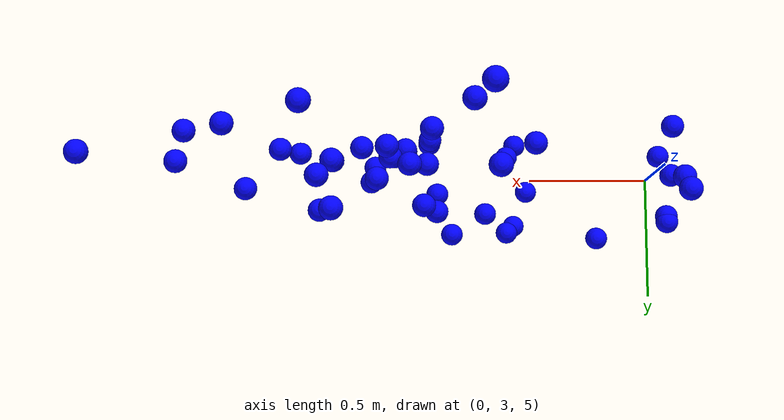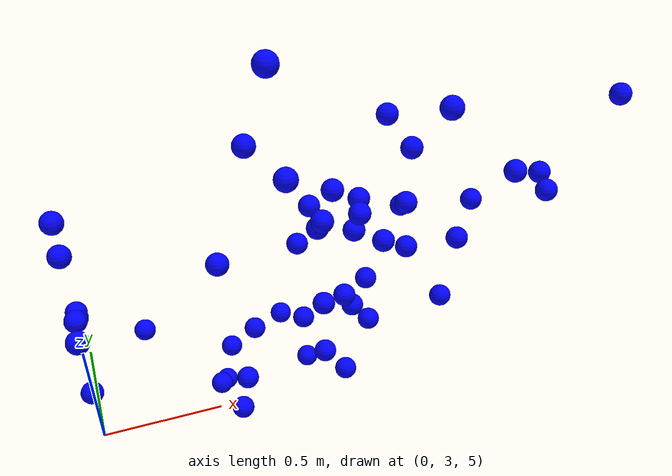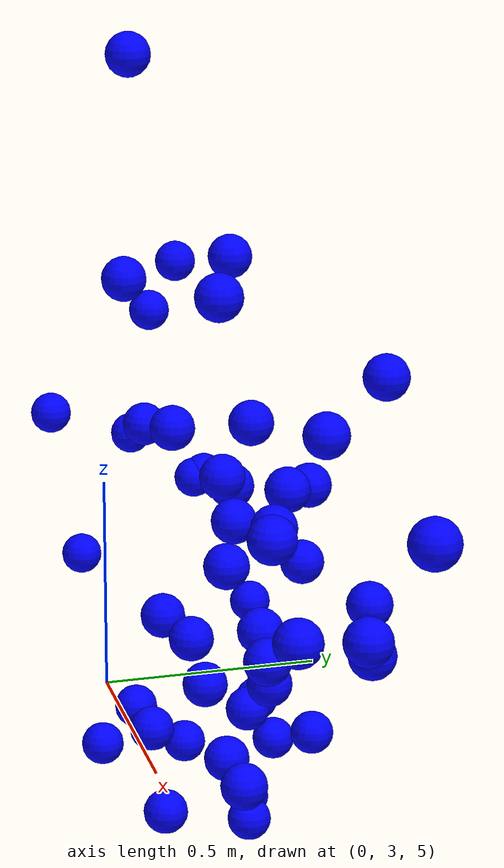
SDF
<sdf version="1.10">
 <world name="sphere">
  <model name="ground_plane">
   <static>true</static>
   <link name="link">
    <collision name="collision">
     <geometry><plane><normal>0 0 1</normal><size>100 100</size></plane></geometry>
    </collision>
    <visual name="visual">
     <geometry><plane><normal>0 0 1</normal><size>100 100</size></plane></geometry>
     <material>
      <ambient>0.800000012 0.800000012 0.800000012 1</ambient>
      <diffuse>0.800000012 0.800000012 0.800000012 1</diffuse>
      <specular>0.800000012 0.800000012 0.800000012 1</specular>
     </material>
    </visual>
    <inertial>
     <mass>1</mass>
     <inertia><ixx>1</ixx><ixy>0</ixy><ixz>0</ixz><iyy>1</iyy><iyz>0</iyz><izz>1</izz></inertia>
    </inertial>
   </link>
  </model>
  <model name="sphere_03">
   <pose>1.3758639097213745 3.2076399326324463 5.7371301651000977 0 0 0</pose>
   <link name="sphere_link">
    <inertial>
     <inertia>
      <ixx>0.10000000000000001</ixx>
      <ixy>0</ixy>
      <ixz>0</ixz>
      <iyy>0.10000000000000001</iyy>
      <iyz>0</iyz>
      <izz>0.10000000000000001</izz>
     </inertia>
     <mass>1</mass>
    </inertial>
    <collision name="sphere_collision">
     <geometry><sphere><radius>0.044999999999999998</radius></sphere></geometry>
    </collision>
    <visual name="sphere_visual">
     <geometry><sphere><radius>0.044999999999999998</radius></sphere></geometry>
     <material><ambient>0 0 1 1</ambient><diffuse>0 0 1 1</diffuse><specular>0 0 1 1</specular></material>
    </visual>
   </link>
   <static>false</static>
   <self_collide>true</self_collide>
  </model>
  <model name="sphere_04">
   <pose>0.90909630060195923 3.0961899757385254 5.3272900581359863 0 0 0</pose>
   <link name="sphere_link">
    <inertial>
     <inertia>
      <ixx>0.10000000000000001</ixx>
      <ixy>0</ixy>
      <ixz>0</ixz>
      <iyy>0.10000000000000001</iyy>
      <iyz>0</iyz>
      <izz>0.10000000000000001</izz>
     </inertia>
     <mass>1</mass>
    </inertial>
    <collision name="sphere_collision">
     <geometry><sphere><radius>0.044999999999999998</radius></sphere></geometry>
    </collision>
    <visual name="sphere_visual">
     <geometry><sphere><radius>0.044999999999999998</radius></sphere></geometry>
     <material><ambient>0 0 1 1</ambient><diffuse>0 0 1 1</diffuse><specular>0 0 1 1</specular></material>
    </visual>
   </link>
   <static>false</static>
   <self_collide>true</self_collide>
  </model>
  <model name="sphere_06">
   <pose>0.52478998899459839 3.0577552318572998 5.0836100578308105 0 0 0</pose>
   <link name="sphere_link">
    <inertial>
     <inertia>
      <ixx>0.10000000000000001</ixx>
      <ixy>0</ixy>
      <ixz>0</ixz>
      <iyy>0.10000000000000001</iyy>
      <iyz>0</iyz>
      <izz>0.10000000000000001</izz>
     </inertia>
     <mass>1</mass>
     <pose>0 0 0.69999999999999996 0 0 0</pose>
    </inertial>
    <collision name="sphere_collision">
     <geometry><sphere><radius>0.044999999999999998</radius></sphere></geometry>
    </collision>
    <visual name="sphere_visual">
     <geometry><sphere><radius>0.044999999999999998</radius></sphere></geometry>
     <material><ambient>0 0 1 1</ambient><diffuse>0 0 1 1</diffuse><specular>0 0 1 1</specular></material>
    </visual>
   </link>
   <static>false</static>
   <self_collide>true</self_collide>
  </model>
  <model name="sphere_07">
   <pose>0.84674102067947388 3.2525029182434082 5.2275600433349609 0 0 0</pose>
   <link name="sphere_link">
    <inertial>
     <inertia>
      <ixx>0.10000000000000001</ixx>
      <ixy>0</ixy>
      <ixz>0</ixz>
      <iyy>0.10000000000000001</iyy>
      <iyz>0</iyz>
      <izz>0.10000000000000001</izz>
     </inertia>
     <mass>1</mass>
    </inertial>
    <collision name="sphere_collision">
     <geometry><sphere><radius>0.044999999999999998</radius></sphere></geometry>
    </collision>
    <visual name="sphere_visual">
     <geometry><sphere><radius>0.044999999999999998</radius></sphere></geometry>
     <material><ambient>0 0 1 1</ambient><diffuse>0 0 1 1</diffuse><specular>0 0 1 1</specular></material>
    </visual>
   </link>
   <static>false</static>
   <self_collide>true</self_collide>
  </model>
  <model name="sphere_12">
   <pose>1.1540199518203735 3.1078150272369385 5.8965902328491211 0 0 0</pose>
   <link name="sphere_link">
    <inertial>
     <inertia>
      <ixx>0.10000000000000001</ixx>
      <ixy>0</ixy>
      <ixz>0</ixz>
      <iyy>0.10000000000000001</iyy>
      <iyz>0</iyz>
      <izz>0.10000000000000001</izz>
     </inertia>
     <mass>1</mass>
     <pose>0 0 0.69999999999999996 0 0 0</pose>
    </inertial>
    <collision name="sphere_collision">
     <geometry><sphere><radius>0.044999999999999998</radius></sphere></geometry>
    </collision>
    <visual name="sphere_visual">
     <geometry><sphere><radius>0.044999999999999998</radius></sphere></geometry>
     <material><ambient>0 0 1 1</ambient><diffuse>0 0 1 1</diffuse><specular>0 0 1 1</specular></material>
    </visual>
   </link>
   <static>false</static>
   <self_collide>true</self_collide>
  </model>
  <model name="sphere_13">
   <pose>0.25382706522941589 3.2772500514984131 5.2821002006530762 0 0 0</pose>
   <link name="sphere_link">
    <inertial>
     <inertia>
      <ixx>0.10000000000000001</ixx>
      <ixy>0</ixy>
      <ixz>0</ixz>
      <iyy>0.10000000000000001</iyy>
      <iyz>0</iyz>
      <izz>0.10000000000000001</izz>
     </inertia>
     <mass>1</mass>
     <pose>0 0 0.69999999999999996 0 0 0</pose>
    </inertial>
    <collision name="sphere_collision">
     <geometry><sphere><radius>0.044999999999999998</radius></sphere></geometry>
    </collision>
    <visual name="sphere_visual">
     <geometry><sphere><radius>0.044999999999999998</radius></sphere></geometry>
     <material><ambient>0 0 1 1</ambient><diffuse>0 0 1 1</diffuse><specular>0 0 1 1</specular></material>
    </visual>
   </link>
   <static>false</static>
   <self_collide>true</self_collide>
  </model>
  <model name="sphere_14">
   <pose>1.0408979654312134 2.9444799423217773 5.5553398132324219 0 0 0</pose>
   <link name="sphere_link">
    <inertial>
     <inertia>
      <ixx>0.10000000000000001</ixx>
      <ixy>0</ixy>
      <ixz>0</ixz>
      <iyy>0.10000000000000001</iyy>
      <iyz>0</iyz>
      <izz>0.10000000000000001</izz>
     </inertia>
     <mass>1</mass>
     <pose>0 0 0.69999999999999996 0 0 0</pose>
    </inertial>
    <collision name="sphere_collision">
     <geometry><sphere><radius>0.044999999999999998</radius></sphere></geometry>
    </collision>
    <visual name="sphere_visual">
     <geometry><sphere><radius>0.044999999999999998</radius></sphere></geometry>
     <material><ambient>0 0 1 1</ambient><diffuse>0 0 1 1</diffuse><specular>0 0 1 1</specular></material>
    </visual>
   </link>
   <static>false</static>
   <self_collide>true</self_collide>
  </model>
  <model name="sphere_17">
   <pose>1.1766971349716187 3.0682199001312256 5.5024600028991699 0 0 0</pose>
   <link name="sphere_link">
    <inertial>
     <inertia>
      <ixx>0.10000000000000001</ixx>
      <ixy>0</ixy>
      <ixz>0</ixz>
      <iyy>0.10000000000000001</iyy>
      <iyz>0</iyz>
      <izz>0.10000000000000001</izz>
     </inertia>
     <mass>1</mass>
     <pose>0 0 0.69999999999999996 0 0 0</pose>
    </inertial>
    <collision name="sphere_collision">
     <geometry><sphere><radius>0.044999999999999998</radius></sphere></geometry>
    </collision>
    <visual name="sphere_visual">
     <geometry><sphere><radius>0.044999999999999998</radius></sphere></geometry>
     <material><ambient>0 0 1 1</ambient><diffuse>0 0 1 1</diffuse><specular>0 0 1 1</specular></material>
    </visual>
   </link>
   <static>false</static>
   <self_collide>true</self_collide>
  </model>
  <model name="sphere_18">
   <pose>1.3726999759674072 3.1196067333221436 6.0826001167297363 0 0 0</pose>
   <link name="sphere_link">
    <inertial>
     <inertia>
      <ixx>0.10000000000000001</ixx>
      <ixy>0</ixy>
      <ixz>0</ixz>
      <iyy>0.10000000000000001</iyy>
      <iyz>0</iyz>
      <izz>0.10000000000000001</izz>
     </inertia>
     <mass>1</mass>
     <pose>0 0 0.69999999999999996 0 0 0</pose>
    </inertial>
    <collision name="sphere_collision">
     <geometry><sphere><radius>0.044999999999999998</radius></sphere></geometry>
    </collision>
    <visual name="sphere_visual">
     <geometry><sphere><radius>0.044999999999999998</radius></sphere></geometry>
     <material><ambient>0 0 1 1</ambient><diffuse>0 0 1 1</diffuse><specular>0 0 1 1</specular></material>
    </visual>
   </link>
   <static>false</static>
   <self_collide>true</self_collide>
  </model>
  <model name="sphere_20">
   <pose>1.5283499956130981 2.966209888458252 5.7112307548522949 0 0 0</pose>
   <link name="sphere_link">
    <inertial>
     <inertia>
      <ixx>0.10000000000000001</ixx>
      <ixy>0</ixy>
      <ixz>0</ixz>
      <iyy>0.10000000000000001</iyy>
      <iyz>0</iyz>
      <izz>0.10000000000000001</izz>
     </inertia>
     <mass>1</mass>
     <pose>0 0 0.69999999999999996 0 0 0</pose>
    </inertial>
    <collision name="sphere_collision">
     <geometry><sphere><radius>0.044999999999999998</radius></sphere></geometry>
    </collision>
    <visual name="sphere_visual">
     <geometry><sphere><radius>0.044999999999999998</radius></sphere></geometry>
     <material><ambient>0 0 1 1</ambient><diffuse>0 0 1 1</diffuse><specular>0 0 1 1</specular></material>
    </visual>
   </link>
   <static>false</static>
   <self_collide>true</self_collide>
  </model>
  <model name="sphere_21">
   <pose>2.2217400074005127 3.0480799674987793 6.2031421661376953 0 0 0</pose>
   <link name="sphere_link">
    <inertial>
     <inertia>
      <ixx>0.10000000000000001</ixx>
      <ixy>0</ixy>
      <ixz>0</ixz>
      <iyy>0.10000000000000001</iyy>
      <iyz>0</iyz>
      <izz>0.10000000000000001</izz>
     </inertia>
     <mass>1</mass>
     <pose>0 0 0.69999999999999996 0 0 0</pose>
    </inertial>
    <collision name="sphere_collision">
     <geometry><sphere><radius>0.044999999999999998</radius></sphere></geometry>
    </collision>
    <visual name="sphere_visual">
     <geometry><sphere><radius>0.044999999999999998</radius></sphere></geometry>
     <material><ambient>0 0 1 1</ambient><diffuse>0 0 1 1</diffuse><specular>0 0 1 1</specular></material>
    </visual>
   </link>
   <static>false</static>
   <self_collide>true</self_collide>
  </model>
  <model name="sphere_23">
   <pose>1.7234451770782471 2.9191300868988037 6.0306200981140137 0 0 0</pose>
   <link name="sphere_link">
    <inertial>
     <inertia>
      <ixx>0.10000000000000001</ixx>
      <ixy>0</ixy>
      <ixz>0</ixz>
      <iyy>0.10000000000000001</iyy>
      <iyz>0</iyz>
      <izz>0.10000000000000001</izz>
     </inertia>
     <mass>1</mass>
     <pose>0 0 0.69999999999999996 0 0 0</pose>
    </inertial>
    <collision name="sphere_collision">
     <geometry><sphere><radius>0.044999999999999998</radius></sphere></geometry>
    </collision>
    <visual name="sphere_visual">
     <geometry><sphere><radius>0.044999999999999998</radius></sphere></geometry>
     <material><ambient>0 0 1 1</ambient><diffuse>0 0 1 1</diffuse><specular>0 0 1 1</specular></material>
    </visual>
   </link>
   <static>false</static>
   <self_collide>true</self_collide>
  </model>
  <model name="sphere_24">
   <pose>0.920390784740448 3.0976099967956543 5.0828800201416016 0 0 0</pose>
   <link name="sphere_link">
    <inertial>
     <inertia>
      <ixx>0.10000000000000001</ixx>
      <ixy>0</ixy>
      <ixz>0</ixz>
      <iyy>0.10000000000000001</iyy>
      <iyz>0</iyz>
      <izz>0.10000000000000001</izz>
     </inertia>
     <mass>1</mass>
     <pose>0 0 0.69999999999999996 0 0 0</pose>
    </inertial>
    <collision name="sphere_collision">
     <geometry><sphere><radius>0.044999999999999998</radius></sphere></geometry>
    </collision>
    <visual name="sphere_visual">
     <geometry><sphere><radius>0.044999999999999998</radius></sphere></geometry>
     <material><ambient>0 0 1 1</ambient><diffuse>0 0 1 1</diffuse><specular>0 0 1 1</specular></material>
    </visual>
   </link>
   <static>false</static>
   <self_collide>true</self_collide>
  </model>
  <model name="sphere_25">
   <pose>1.1628700494766235 2.9856400489807129 5.3452863693237305 0 0 0</pose>
   <link name="sphere_link">
    <inertial>
     <inertia>
      <ixx>0.10000000000000001</ixx>
      <ixy>0</ixy>
      <ixz>0</ixz>
      <iyy>0.10000000000000001</iyy>
      <iyz>0</iyz>
      <izz>0.10000000000000001</izz>
     </inertia>
     <mass>1</mass>
     <pose>0 0 0.69999999999999996 0 0 0</pose>
    </inertial>
    <collision name="sphere_collision">
     <geometry><sphere><radius>0.044999999999999998</radius></sphere></geometry>
    </collision>
    <visual name="sphere_visual">
     <geometry><sphere><radius>0.044999999999999998</radius></sphere></geometry>
     <material><ambient>0 0 1 1</ambient><diffuse>0 0 1 1</diffuse><specular>0 0 1 1</specular></material>
    </visual>
   </link>
   <static>false</static>
   <self_collide>true</self_collide>
  </model>
  <model name="sphere_27">
   <pose>1.4216636419296265 2.9017300605773926 6.3804302215576172 0 0 0</pose>
   <link name="sphere_link">
    <inertial>
     <inertia>
      <ixx>0.10000000000000001</ixx>
      <ixy>0</ixy>
      <ixz>0</ixz>
      <iyy>0.10000000000000001</iyy>
      <iyz>0</iyz>
      <izz>0.10000000000000001</izz>
     </inertia>
     <mass>1</mass>
     <pose>0 0 0.69999999999999996 0 0 0</pose>
    </inertial>
    <collision name="sphere_collision">
     <geometry><sphere><radius>0.044999999999999998</radius></sphere></geometry>
    </collision>
    <visual name="sphere_visual">
     <geometry><sphere><radius>0.044999999999999998</radius></sphere></geometry>
     <material><ambient>0 0 1 1</ambient><diffuse>0 0 1 1</diffuse><specular>0 0 1 1</specular></material>
    </visual>
   </link>
   <static>false</static>
   <self_collide>true</self_collide>
  </model>
  <model name="sphere_28">
   <pose>1.6581699848175049 3.1258094310760498 5.7612099647521973 0 0 0</pose>
   <link name="sphere_link">
    <inertial>
     <inertia>
      <ixx>0.10000000000000001</ixx>
      <ixy>0</ixy>
      <ixz>0</ixz>
      <iyy>0.10000000000000001</iyy>
      <iyz>0</iyz>
      <izz>0.10000000000000001</izz>
     </inertia>
     <mass>1</mass>
     <pose>0 0 0.69999999999999996 0 0 0</pose>
    </inertial>
    <collision name="sphere_collision">
     <geometry><sphere><radius>0.044999999999999998</radius></sphere></geometry>
    </collision>
    <visual name="sphere_visual">
     <geometry><sphere><radius>0.044999999999999998</radius></sphere></geometry>
     <material><ambient>0 0 1 1</ambient><diffuse>0 0 1 1</diffuse><specular>0 0 1 1</specular></material>
    </visual>
   </link>
   <static>false</static>
   <self_collide>true</self_collide>
  </model>
  <model name="sphere_35">
   <pose>1.9086498022079468 3.0391800403594971 5.9025201797485352 0 0 0</pose>
   <link name="sphere_link">
    <inertial>
     <inertia>
      <ixx>0.10000000000000001</ixx>
      <ixy>0</ixy>
      <ixz>0</ixz>
      <iyy>0.10000000000000001</iyy>
      <iyz>0</iyz>
      <izz>0.10000000000000001</izz>
     </inertia>
     <mass>1</mass>
     <pose>0 0 0.69999999999999996 0 0 0</pose>
    </inertial>
    <collision name="sphere_collision">
     <geometry><sphere><radius>0.044999999999999998</radius></sphere></geometry>
    </collision>
    <visual name="sphere_visual">
     <geometry><sphere><radius>0.044999999999999998</radius></sphere></geometry>
     <material><ambient>0 0 1 1</ambient><diffuse>0 0 1 1</diffuse><specular>0 0 1 1</specular></material>
    </visual>
   </link>
   <static>false</static>
   <self_collide>true</self_collide>
  </model>
  <model name="sphere_38">
   <pose>0.70926922559738159 3.1699800491333008 5.2538199424743652 0 0 0</pose>
   <link name="sphere_link">
    <inertial>
     <inertia>
      <ixx>0.10000000000000001</ixx>
      <ixy>0</ixy>
      <ixz>0</ixz>
      <iyy>0.10000000000000001</iyy>
      <iyz>0</iyz>
      <izz>0.10000000000000001</izz>
     </inertia>
     <mass>1</mass>
     <pose>0 0 0.69999999999999996 0 0 0</pose>
    </inertial>
    <collision name="sphere_collision">
     <geometry><sphere><radius>0.044999999999999998</radius></sphere></geometry>
    </collision>
    <visual name="sphere_visual">
     <geometry><sphere><radius>0.044999999999999998</radius></sphere></geometry>
     <material><ambient>0 0 1 1</ambient><diffuse>0 0 1 1</diffuse><specular>0 0 1 1</specular></material>
    </visual>
   </link>
   <static>false</static>
   <self_collide>true</self_collide>
  </model>
  <model name="sphere_39">
   <pose>1.3259987831115723 3.0083398818969727 5.6839499473571777 0 0 0</pose>
   <link name="sphere_link">
    <inertial>
     <inertia>
      <ixx>0.10000000000000001</ixx>
      <ixy>0</ixy>
      <ixz>0</ixz>
      <iyy>0.10000000000000001</iyy>
      <iyz>0</iyz>
      <izz>0.10000000000000001</izz>
     </inertia>
     <mass>1</mass>
     <pose>0 0 0.69999999999999996 0 0 0</pose>
    </inertial>
    <collision name="sphere_collision">
     <geometry><sphere><radius>0.044999999999999998</radius></sphere></geometry>
    </collision>
    <visual name="sphere_visual">
     <geometry><sphere><radius>0.044999999999999998</radius></sphere></geometry>
     <material><ambient>0 0 1 1</ambient><diffuse>0 0 1 1</diffuse><specular>0 0 1 1</specular></material>
    </visual>
   </link>
   <static>false</static>
   <self_collide>true</self_collide>
  </model>
  <model name="sphere_40">
   <pose>1.4648668766021729 2.9401900768280029 5.4328398704528809 0 0 0</pose>
   <link name="sphere_link">
    <inertial>
     <inertia>
      <ixx>0.10000000000000001</ixx>
      <ixy>0</ixy>
      <ixz>0</ixz>
      <iyy>0.10000000000000001</iyy>
      <iyz>0</iyz>
      <izz>0.10000000000000001</izz>
     </inertia>
     <mass>1</mass>
     <pose>0 0 0.69999999999999996 0 0 0</pose>
    </inertial>
    <collision name="sphere_collision">
     <geometry><sphere><radius>0.044999999999999998</radius></sphere></geometry>
    </collision>
    <visual name="sphere_visual">
     <geometry><sphere><radius>0.044999999999999998</radius></sphere></geometry>
     <material><ambient>0 0 1 1</ambient><diffuse>0 0 1 1</diffuse><specular>0 0 1 1</specular></material>
    </visual>
   </link>
   <static>false</static>
   <self_collide>true</self_collide>
  </model>
  <model name="sphere_42">
   <pose>0.54871690273284912 2.9668200016021729 5.8345599174499512 0 0 0</pose>
   <link name="sphere_link">
    <inertial>
     <inertia>
      <ixx>0.10000000000000001</ixx>
      <ixy>0</ixy>
      <ixz>0</ixz>
      <iyy>0.10000000000000001</iyy>
      <iyz>0</iyz>
      <izz>0.10000000000000001</izz>
     </inertia>
     <mass>1</mass>
     <pose>0 0 0.69999999999999996 0 0 0</pose>
    </inertial>
    <collision name="sphere_collision">
     <geometry><sphere><radius>0.044999999999999998</radius></sphere></geometry>
    </collision>
    <visual name="sphere_visual">
     <geometry><sphere><radius>0.044999999999999998</radius></sphere></geometry>
     <material><ambient>0 0 1 1</ambient><diffuse>0 0 1 1</diffuse><specular>0 0 1 1</specular></material>
    </visual>
   </link>
   <static>false</static>
   <self_collide>true</self_collide>
  </model>
  <model name="sphere_43">
   <pose>0.9218519926071167 3.2054018974304199 5.6465001106262207 0 0 0</pose>
   <link name="sphere_link">
    <inertial>
     <inertia>
      <ixx>0.10000000000000001</ixx>
      <ixy>0</ixy>
      <ixz>0</ixz>
      <iyy>0.10000000000000001</iyy>
      <iyz>0</iyz>
      <izz>0.10000000000000001</izz>
     </inertia>
     <mass>1</mass>
     <pose>0 0 0.69999999999999996 0 0 0</pose>
    </inertial>
    <collision name="sphere_collision">
     <geometry><sphere><radius>0.044999999999999998</radius></sphere></geometry>
    </collision>
    <visual name="sphere_visual">
     <geometry><sphere><radius>0.044999999999999998</radius></sphere></geometry>
     <material><ambient>0 0 1 1</ambient><diffuse>0 0 1 1</diffuse><specular>0 0 1 1</specular></material>
    </visual>
   </link>
   <static>false</static>
   <self_collide>true</self_collide>
  </model>
  <model name="sphere_44">
   <pose>0.9764549732208252 3.2027599811553955 5.8323245048522949 0 0 0</pose>
   <link name="sphere_link">
    <inertial>
     <inertia>
      <ixx>0.10000000000000001</ixx>
      <ixy>0</ixy>
      <ixz>0</ixz>
      <iyy>0.10000000000000001</iyy>
      <iyz>0</iyz>
      <izz>0.10000000000000001</izz>
     </inertia>
     <mass>1</mass>
     <pose>0 0 0.69999999999999996 0 0 0</pose>
    </inertial>
    <collision name="sphere_collision">
     <geometry><sphere><radius>0.044999999999999998</radius></sphere></geometry>
    </collision>
    <visual name="sphere_visual">
     <geometry><sphere><radius>0.044999999999999998</radius></sphere></geometry>
     <material><ambient>0 0 1 1</ambient><diffuse>0 0 1 1</diffuse><specular>0 0 1 1</specular></material>
    </visual>
   </link>
   <static>false</static>
   <self_collide>true</self_collide>
  </model>
  <model name="sphere_45">
   <pose>0 2.9454939365386963 5.3318800926208496 0 0 0</pose>
   <link name="sphere_link">
    <inertial>
     <inertia>
      <ixx>0.10000000000000001</ixx>
      <ixy>0</ixy>
      <ixz>0</ixz>
      <iyy>0.10000000000000001</iyy>
      <iyz>0</iyz>
      <izz>0.10000000000000001</izz>
     </inertia>
     <mass>1</mass>
     <pose>0 0 0.69999999999999996 0 0 0</pose>
    </inertial>
    <collision name="sphere_collision">
     <geometry><sphere><radius>0.044999999999999998</radius></sphere></geometry>
    </collision>
    <visual name="sphere_visual">
     <geometry><sphere><radius>0.044999999999999998</radius></sphere></geometry>
     <material><ambient>0 0 1 1</ambient><diffuse>0 0 1 1</diffuse><specular>0 0 1 1</specular></material>
    </visual>
   </link>
   <static>false</static>
   <self_collide>true</self_collide>
  </model>
  <model name="sphere_47">
   <pose>0.71168500185012817 3.1084346771240234 6.2366299629211426 0 0 0</pose>
   <link name="sphere_link">
    <inertial>
     <inertia>
      <ixx>0.10000000000000001</ixx>
      <ixy>0</ixy>
      <ixz>0</ixz>
      <iyy>0.10000000000000001</iyy>
      <iyz>0</iyz>
      <izz>0.10000000000000001</izz>
     </inertia>
     <mass>1</mass>
     <pose>0 0 0.69999999999999996 0 0 0</pose>
    </inertial>
    <collision name="sphere_collision">
     <geometry><sphere><radius>0.044999999999999998</radius></sphere></geometry>
    </collision>
    <visual name="sphere_visual">
     <geometry><sphere><radius>0.044999999999999998</radius></sphere></geometry>
     <material><ambient>0 0 1 1</ambient><diffuse>0 0 1 1</diffuse><specular>0 0 1 1</specular></material>
    </visual>
   </link>
   <static>false</static>
   <self_collide>true</self_collide>
  </model>
  <model name="sphere_48">
   <pose>0 3.1077263355255127 5.904900074005127 0 0 0</pose>
   <link name="sphere_link">
    <inertial>
     <inertia>
      <ixx>0.10000000000000001</ixx>
      <ixy>0</ixy>
      <ixz>0</ixz>
      <iyy>0.10000000000000001</iyy>
      <iyz>0</iyz>
      <izz>0.10000000000000001</izz>
     </inertia>
     <mass>1</mass>
     <pose>0 0 0.69999999999999996 0 0 0</pose>
    </inertial>
    <collision name="sphere_collision">
     <geometry><sphere><radius>0.044999999999999998</radius></sphere></geometry>
    </collision>
    <visual name="sphere_visual">
     <geometry><sphere><radius>0.044999999999999998</radius></sphere></geometry>
     <material><ambient>0 0 1 1</ambient><diffuse>0 0 1 1</diffuse><specular>0 0 1 1</specular></material>
    </visual>
   </link>
   <static>false</static>
   <self_collide>true</self_collide>
  </model>
  <model name="sphere_49">
   <pose>0.94022500514984131 2.8869268894195557 5.3212299346923828 0 0 0</pose>
   <link name="sphere_link">
    <inertial>
     <inertia>
      <ixx>0.10000000000000001</ixx>
      <ixy>0</ixy>
      <ixz>0</ixz>
      <iyy>0.10000000000000001</iyy>
      <iyz>0</iyz>
      <izz>0.10000000000000001</izz>
     </inertia>
     <mass>1</mass>
     <pose>0 0 0.69999999999999996 0 0 0</pose>
    </inertial>
    <collision name="sphere_collision">
     <geometry><sphere><radius>0.044999999999999998</radius></sphere></geometry>
    </collision>
    <visual name="sphere_visual">
     <geometry><sphere><radius>0.044999999999999998</radius></sphere></geometry>
     <material><ambient>0 0 1 1</ambient><diffuse>0 0 1 1</diffuse><specular>0 0 1 1</specular></material>
    </visual>
   </link>
   <static>false</static>
   <self_collide>true</self_collide>
  </model>
  <model name="sphere_50">
   <pose>0.80174797773361206 2.8684999942779541 6.2338399887084961 0 0 0</pose>
   <link name="sphere_link">
    <inertial>
     <inertia>
      <ixx>0.10000000000000001</ixx>
      <ixy>0</ixy>
      <ixz>0</ixz>
      <iyy>0.10000000000000001</iyy>
      <iyz>0</iyz>
      <izz>0.10000000000000001</izz>
     </inertia>
     <mass>1</mass>
     <pose>0 0 0.69999999999999996 0 0 0</pose>
    </inertial>
    <collision name="sphere_collision">
     <geometry><sphere><radius>0.044999999999999998</radius></sphere></geometry>
    </collision>
    <visual name="sphere_visual">
     <geometry><sphere><radius>0.044999999999999998</radius></sphere></geometry>
     <material><ambient>0 0 1 1</ambient><diffuse>0 0 1 1</diffuse><specular>0 0 1 1</specular></material>
    </visual>
   </link>
   <static>false</static>
   <self_collide>true</self_collide>
  </model>
  <model name="sphere_52">
   <pose>1.0817099809646606 2.9623360633850098 5.4718799591064453 0 0 0</pose>
   <link name="sphere_link">
    <inertial>
     <inertia>
      <ixx>0.10000000000000001</ixx>
      <ixy>0</ixy>
      <ixz>0</ixz>
      <iyy>0.10000000000000001</iyy>
      <iyz>0</iyz>
      <izz>0.10000000000000001</izz>
     </inertia>
     <mass>1</mass>
     <pose>0 0 0.69999999999999996 0 0 0</pose>
    </inertial>
    <collision name="sphere_collision">
     <geometry><sphere><radius>0.044999999999999998</radius></sphere></geometry>
    </collision>
    <visual name="sphere_visual">
     <geometry><sphere><radius>0.044999999999999998</radius></sphere></geometry>
     <material><ambient>0 0 1 1</ambient><diffuse>0 0 1 1</diffuse><specular>0 0 1 1</specular></material>
    </visual>
   </link>
   <static>false</static>
   <self_collide>true</self_collide>
  </model>
  <model name="sphere_55">
   <pose>0 3.168473482131958 6.0153698921203613 0 0 0</pose>
   <link name="sphere_link">
    <inertial>
     <inertia>
      <ixx>0.10000000000000001</ixx>
      <ixy>0</ixy>
      <ixz>0</ixz>
      <iyy>0.10000000000000001</iyy>
      <iyz>0</iyz>
      <izz>0.10000000000000001</izz>
     </inertia>
     <mass>1</mass>
     <pose>0 0 0.69999999999999996 0 0 0</pose>
    </inertial>
    <collision name="sphere_collision">
     <geometry><sphere><radius>0.044999999999999998</radius></sphere></geometry>
    </collision>
    <visual name="sphere_visual">
     <geometry><sphere><radius>0.044999999999999998</radius></sphere></geometry>
     <material><ambient>0 0 1 1</ambient><diffuse>0 0 1 1</diffuse><specular>0 0 1 1</specular></material>
    </visual>
   </link>
   <static>false</static>
   <self_collide>true</self_collide>
  </model>
  <model name="sphere_58">
   <pose>0.96352899074554443 3.0467255115509033 5.8408999443054199 0 0 0</pose>
   <link name="sphere_link">
    <inertial>
     <inertia>
      <ixx>0.10000000000000001</ixx>
      <ixy>0</ixy>
      <ixz>0</ixz>
      <iyy>0.10000000000000001</iyy>
      <iyz>0</iyz>
      <izz>0.10000000000000001</izz>
     </inertia>
     <mass>1</mass>
     <pose>0 0 0.69999999999999996 0 0 0</pose>
    </inertial>
    <collision name="sphere_collision">
     <geometry><sphere><radius>0.044999999999999998</radius></sphere></geometry>
    </collision>
    <visual name="sphere_visual">
     <geometry><sphere><radius>0.044999999999999998</radius></sphere></geometry>
     <material><ambient>0 0 1 1</ambient><diffuse>0 0 1 1</diffuse><specular>0 0 1 1</specular></material>
    </visual>
   </link>
   <static>false</static>
   <self_collide>true</self_collide>
  </model>
  <model name="sphere_59">
   <pose>0 3.2348027229309082 5.5027198791503906 0 0 0</pose>
   <link name="sphere_link">
    <inertial>
     <inertia>
      <ixx>0.10000000000000001</ixx>
      <ixy>0</ixy>
      <ixz>0</ixz>
      <iyy>0.10000000000000001</iyy>
      <iyz>0</iyz>
      <izz>0.10000000000000001</izz>
     </inertia>
     <mass>1</mass>
     <pose>0 0 0.69999999999999996 0 0 0</pose>
    </inertial>
    <collision name="sphere_collision">
     <geometry><sphere><radius>0.044999999999999998</radius></sphere></geometry>
    </collision>
    <visual name="sphere_visual">
     <geometry><sphere><radius>0.044999999999999998</radius></sphere></geometry>
     <material><ambient>0 0 1 1</ambient><diffuse>0 0 1 1</diffuse><specular>0 0 1 1</specular></material>
    </visual>
   </link>
   <static>false</static>
   <self_collide>true</self_collide>
  </model>
  <model name="sphere_61">
   <pose>0 3.2113795280456543 5.4935698509216309 0 0 0</pose>
   <link name="sphere_link">
    <inertial>
     <inertia>
      <ixx>0.10000000000000001</ixx>
      <ixy>0</ixy>
      <ixz>0</ixz>
      <iyy>0.10000000000000001</iyy>
      <iyz>0</iyz>
      <izz>0.10000000000000001</izz>
     </inertia>
     <mass>1</mass>
     <pose>0 0 0.69999999999999996 0 0 0</pose>
    </inertial>
    <collision name="sphere_collision">
     <geometry><sphere><radius>0.044999999999999998</radius></sphere></geometry>
    </collision>
    <visual name="sphere_visual">
     <geometry><sphere><radius>0.044999999999999998</radius></sphere></geometry>
     <material><ambient>0 0 1 1</ambient><diffuse>0 0 1 1</diffuse><specular>0 0 1 1</specular></material>
    </visual>
   </link>
   <static>false</static>
   <self_collide>true</self_collide>
  </model>
  <model name="sphere_63">
   <pose>0 3.0634081363677979 5.6152701377868652 0 0 0</pose>
   <link name="sphere_link">
    <inertial>
     <inertia>
      <ixx>0.10000000000000001</ixx>
      <ixy>0</ixy>
      <ixz>0</ixz>
      <iyy>0.10000000000000001</iyy>
      <iyz>0</iyz>
      <izz>0.10000000000000001</izz>
     </inertia>
     <mass>1</mass>
     <pose>0 0 0.69999999999999996 0 0 0</pose>
    </inertial>
    <collision name="sphere_collision">
     <geometry><sphere><radius>0.044999999999999998</radius></sphere></geometry>
    </collision>
    <visual name="sphere_visual">
     <geometry><sphere><radius>0.044999999999999998</radius></sphere></geometry>
     <material><ambient>0 0 1 1</ambient><diffuse>0 0 1 1</diffuse><specular>0 0 1 1</specular></material>
    </visual>
   </link>
   <static>false</static>
   <self_collide>true</self_collide>
  </model>
  <model name="sphere_65">
   <pose>1.8793100118637085 2.9231710433959961 5.900360107421875 0 0 0</pose>
   <link name="sphere_link">
    <inertial>
     <inertia>
      <ixx>0.10000000000000001</ixx>
      <ixy>0</ixy>
      <ixz>0</ixz>
      <iyy>0.10000000000000001</iyy>
      <iyz>0</iyz>
      <izz>0.10000000000000001</izz>
     </inertia>
     <mass>1</mass>
     <pose>0 0 0.69999999999999996 0 0 0</pose>
    </inertial>
    <collision name="sphere_collision">
     <geometry><sphere><radius>0.044999999999999998</radius></sphere></geometry>
    </collision>
    <visual name="sphere_visual">
     <geometry><sphere><radius>0.044999999999999998</radius></sphere></geometry>
     <material><ambient>0 0 1 1</ambient><diffuse>0 0 1 1</diffuse><specular>0 0 1 1</specular></material>
    </visual>
   </link>
   <static>false</static>
   <self_collide>true</self_collide>
  </model>
  <model name="sphere_67">
   <pose>0 2.8790934085845947 5.6799101829528809 0 0 0</pose>
   <link name="sphere_link">
    <inertial>
     <inertia>
      <ixx>0.10000000000000001</ixx>
      <ixy>0</ixy>
      <ixz>0</ixz>
      <iyy>0.10000000000000001</iyy>
      <iyz>0</iyz>
      <izz>0.10000000000000001</izz>
     </inertia>
     <mass>1</mass>
     <pose>0 0 0.69999999999999996 0 0 0</pose>
    </inertial>
    <collision name="sphere_collision">
     <geometry><sphere><radius>0.044999999999999998</radius></sphere></geometry>
    </collision>
    <visual name="sphere_visual">
     <geometry><sphere><radius>0.044999999999999998</radius></sphere></geometry>
     <material><ambient>0 0 1 1</ambient><diffuse>0 0 1 1</diffuse><specular>0 0 1 1</specular></material>
    </visual>
   </link>
   <static>false</static>
   <self_collide>true</self_collide>
  </model>
  <model name="sphere_70">
   <pose>0.61089873313903809 3.2345900535583496 5.1096301078796387 0 0 0</pose>
   <link name="sphere_link">
    <inertial>
     <inertia>
      <ixx>0.10000000000000001</ixx>
      <ixy>0</ixy>
      <ixz>0</ixz>
      <iyy>0.10000000000000001</iyy>
      <iyz>0</iyz>
      <izz>0.10000000000000001</izz>
     </inertia>
     <mass>1</mass>
     <pose>0 0 0.69999999999999996 0 0 0</pose>
    </inertial>
    <collision name="sphere_collision">
     <geometry><sphere><radius>0.044999999999999998</radius></sphere></geometry>
    </collision>
    <visual name="sphere_visual">
     <geometry><sphere><radius>0.044999999999999998</radius></sphere></geometry>
     <material><ambient>0 0 1 1</ambient><diffuse>0 0 1 1</diffuse><specular>0 0 1 1</specular></material>
    </visual>
   </link>
   <static>false</static>
   <self_collide>true</self_collide>
  </model>
  <model name="sphere_75">
   <pose>0.75872302055358887 2.8904900550842285 6.6736698150634766 0 0 0</pose>
   <link name="sphere_link">
    <inertial>
     <inertia>
      <ixx>0.10000000000000001</ixx>
      <ixy>0</ixy>
      <ixz>0</ixz>
      <iyy>0.10000000000000001</iyy>
      <iyz>0</iyz>
      <izz>0.10000000000000001</izz>
     </inertia>
     <mass>1</mass>
     <pose>0 0 0.69999999999999996 0 0 0</pose>
    </inertial>
    <collision name="sphere_collision">
     <geometry><sphere><radius>0.044999999999999998</radius></sphere></geometry>
    </collision>
    <visual name="sphere_visual">
     <geometry><sphere><radius>0.044999999999999998</radius></sphere></geometry>
     <material><ambient>0 0 1 1</ambient><diffuse>0 0 1 1</diffuse><specular>0 0 1 1</specular></material>
    </visual>
   </link>
   <static>false</static>
   <self_collide>true</self_collide>
  </model>
  <model name="sphere_76">
   <pose>0.61635100841522217 2.9289090633392334 5.2231202125549316 0 0 0</pose>
   <link name="sphere_link">
    <inertial>
     <inertia>
      <ixx>0.10000000000000001</ixx>
      <ixy>0</ixy>
      <ixz>0</ixz>
      <iyy>0.10000000000000001</iyy>
      <iyz>0</iyz>
      <izz>0.10000000000000001</izz>
     </inertia>
     <mass>1</mass>
     <pose>0 0 0.69999999999999996 0 0 0</pose>
    </inertial>
    <collision name="sphere_collision">
     <geometry><sphere><radius>0.044999999999999998</radius></sphere></geometry>
    </collision>
    <visual name="sphere_visual">
     <geometry><sphere><radius>0.044999999999999998</radius></sphere></geometry>
     <material><ambient>0 0 1 1</ambient><diffuse>0 0 1 1</diffuse><specular>0 0 1 1</specular></material>
    </visual>
   </link>
   <static>false</static>
   <self_collide>true</self_collide>
  </model>
  <model name="sphere_77">
   <pose>1.3170700073242188 3.2508974075317383 6.1665501594543457 0 0 0</pose>
   <link name="sphere_link">
    <inertial>
     <inertia>
      <ixx>0.10000000000000001</ixx>
      <ixy>0</ixy>
      <ixz>0</ixz>
      <iyy>0.10000000000000001</iyy>
      <iyz>0</iyz>
      <izz>0.10000000000000001</izz>
     </inertia>
     <mass>1</mass>
     <pose>0 0 0.69999999999999996 0 0 0</pose>
    </inertial>
    <collision name="sphere_collision">
     <geometry><sphere><radius>0.044999999999999998</radius></sphere></geometry>
    </collision>
    <visual name="sphere_visual">
     <geometry><sphere><radius>0.044999999999999998</radius></sphere></geometry>
     <material><ambient>0 0 1 1</ambient><diffuse>0 0 1 1</diffuse><specular>0 0 1 1</specular></material>
    </visual>
   </link>
   <static>false</static>
   <self_collide>true</self_collide>
  </model>
  <model name="sphere_78">
   <pose>1.0315999984741211 2.893139123916626 5.1773700714111328 0 0 0</pose>
   <link name="sphere_link">
    <inertial>
     <inertia>
      <ixx>0.10000000000000001</ixx>
      <ixy>0</ixy>
      <ixz>0</ixz>
      <iyy>0.10000000000000001</iyy>
      <iyz>0</iyz>
      <izz>0.10000000000000001</izz>
     </inertia>
     <mass>1</mass>
     <pose>0 0 0.69999999999999996 0 0 0</pose>
    </inertial>
    <collision name="sphere_collision">
     <geometry><sphere><radius>0.044999999999999998</radius></sphere></geometry>
    </collision>
    <visual name="sphere_visual">
     <geometry><sphere><radius>0.044999999999999998</radius></sphere></geometry>
     <material><ambient>0 0 1 1</ambient><diffuse>0 0 1 1</diffuse><specular>0 0 1 1</specular></material>
    </visual>
   </link>
   <static>false</static>
   <self_collide>true</self_collide>
  </model>
  <model name="sphere_80">
   <pose>0.56895899772644043 3.1893541812896729 4.9557600021362305 0 0 0</pose>
   <link name="sphere_link">
    <inertial>
     <inertia>
      <ixx>0.10000000000000001</ixx>
      <ixy>0</ixy>
      <ixz>0</ixz>
      <iyy>0.10000000000000001</iyy>
      <iyz>0</iyz>
      <izz>0.10000000000000001</izz>
     </inertia>
     <mass>1</mass>
     <pose>0 0 0.69999999999999996 0 0 0</pose>
    </inertial>
    <collision name="sphere_collision">
     <geometry><sphere><radius>0.044999999999999998</radius></sphere></geometry>
    </collision>
    <visual name="sphere_visual">
     <geometry><sphere><radius>0.044999999999999998</radius></sphere></geometry>
     <material><ambient>0 0 1 1</ambient><diffuse>0 0 1 1</diffuse><specular>0 0 1 1</specular></material>
    </visual>
   </link>
   <static>false</static>
   <self_collide>true</self_collide>
  </model>
  <model name="sphere_83">
   <pose>0.57463669776916504 2.86434006690979 5.1233301162719727 0 0 0</pose>
   <link name="sphere_link">
    <inertial>
     <inertia>
      <ixx>0.10000000000000001</ixx>
      <ixy>0</ixy>
      <ixz>0</ixz>
      <iyy>0.10000000000000001</iyy>
      <iyz>0</iyz>
      <izz>0.10000000000000001</izz>
     </inertia>
     <mass>1</mass>
     <pose>0 0 0.69999999999999996 0 0 0</pose>
    </inertial>
    <collision name="sphere_collision">
     <geometry><sphere><radius>0.044999999999999998</radius></sphere></geometry>
    </collision>
    <visual name="sphere_visual">
     <geometry><sphere><radius>0.044999999999999998</radius></sphere></geometry>
     <material><ambient>0 0 1 1</ambient><diffuse>0 0 1 1</diffuse><specular>0 0 1 1</specular></material>
    </visual>
   </link>
   <static>false</static>
   <self_collide>true</self_collide>
  </model>
  <model name="sphere_89">
   <pose>1.1159499883651733 2.987900972366333 5.9200601577758789 0 0 0</pose>
   <link name="sphere_link">
    <inertial>
     <inertia>
      <ixx>0.10000000000000001</ixx>
      <ixy>0</ixy>
      <ixz>0</ixz>
      <iyy>0.10000000000000001</iyy>
      <iyz>0</iyz>
      <izz>0.10000000000000001</izz>
     </inertia>
     <mass>1</mass>
     <pose>0 0 0.69999999999999996 0 0 0</pose>
    </inertial>
    <collision name="sphere_collision">
     <geometry><sphere><radius>0.044999999999999998</radius></sphere></geometry>
    </collision>
    <visual name="sphere_visual">
     <geometry><sphere><radius>0.044999999999999998</radius></sphere></geometry>
     <material><ambient>0 0 1 1</ambient><diffuse>0 0 1 1</diffuse><specular>0 0 1 1</specular></material>
    </visual>
   </link>
   <static>false</static>
   <self_collide>true</self_collide>
  </model>
  <model name="sphere_90">
   <pose>1.3248608112335205 3.0340700149536133 5.8896498680114746 0 0 0</pose>
   <link name="sphere_link">
    <inertial>
     <inertia>
      <ixx>0.10000000000000001</ixx>
      <ixy>0</ixy>
      <ixz>0</ixz>
      <iyy>0.10000000000000001</iyy>
      <iyz>0</iyz>
      <izz>0.10000000000000001</izz>
     </inertia>
     <mass>1</mass>
     <pose>0 0 0.69999999999999996 0 0 0</pose>
    </inertial>
    <collision name="sphere_collision">
     <geometry><sphere><radius>0.044999999999999998</radius></sphere></geometry>
    </collision>
    <visual name="sphere_visual">
     <geometry><sphere><radius>0.044999999999999998</radius></sphere></geometry>
     <material><ambient>0 0 1 1</ambient><diffuse>0 0 1 1</diffuse><specular>0 0 1 1</specular></material>
    </visual>
   </link>
   <static>false</static>
   <self_collide>true</self_collide>
  </model>
  <model name="sphere_93">
   <pose>0.94743800163269043 2.930321216583252 5.967130184173584 0 0 0</pose>
   <link name="sphere_link">
    <inertial>
     <inertia>
      <ixx>0.10000000000000001</ixx>
      <ixy>0</ixy>
      <ixz>0</ixz>
      <iyy>0.10000000000000001</iyy>
      <iyz>0</iyz>
      <izz>0.10000000000000001</izz>
     </inertia>
     <mass>1</mass>
     <pose>0 0 0.69999999999999996 0 0 0</pose>
    </inertial>
    <collision name="sphere_collision">
     <geometry><sphere><radius>0.044999999999999998</radius></sphere></geometry>
    </collision>
    <visual name="sphere_visual">
     <geometry><sphere><radius>0.044999999999999998</radius></sphere></geometry>
     <material><ambient>0 0 1 1</ambient><diffuse>0 0 1 1</diffuse><specular>0 0 1 1</specular></material>
    </visual>
   </link>
   <static>false</static>
   <self_collide>true</self_collide>
  </model>
  <model name="sphere_94">
   <pose>1.0321600437164307 3.0676162242889404 5.9946498870849609 0 0 0</pose>
   <link name="sphere_link">
    <inertial>
     <inertia>
      <ixx>0.10000000000000001</ixx>
      <ixy>0</ixy>
      <ixz>0</ixz>
      <iyy>0.10000000000000001</iyy>
      <iyz>0</iyz>
      <izz>0.10000000000000001</izz>
     </inertia>
     <mass>1</mass>
     <pose>0 0 0.69999999999999996 0 0 0</pose>
    </inertial>
    <collision name="sphere_collision">
     <geometry><sphere><radius>0.044999999999999998</radius></sphere></geometry>
    </collision>
    <visual name="sphere_visual">
     <geometry><sphere><radius>0.044999999999999998</radius></sphere></geometry>
     <material><ambient>0 0 1 1</ambient><diffuse>0 0 1 1</diffuse><specular>0 0 1 1</specular></material>
    </visual>
   </link>
   <static>false</static>
   <self_collide>true</self_collide>
  </model>
  <model name="sphere_96">
   <pose>1.2114599943161011 2.9716498851776123 5.7738699913024902 0 0 0</pose>
   <link name="sphere_link">
    <inertial>
     <inertia>
      <ixx>0.10000000000000001</ixx>
      <ixy>0</ixy>
      <ixz>0</ixz>
      <iyy>0.10000000000000001</iyy>
      <iyz>0</iyz>
      <izz>0.10000000000000001</izz>
     </inertia>
     <mass>1</mass>
     <pose>0 0 0.69999999999999996 0 0 0</pose>
    </inertial>
    <collision name="sphere_collision">
     <geometry><sphere><radius>0.044999999999999998</radius></sphere></geometry>
    </collision>
    <visual name="sphere_visual">
     <geometry><sphere><radius>0.044999999999999998</radius></sphere></geometry>
     <material><ambient>0 0 1 1</ambient><diffuse>0 0 1 1</diffuse><specular>0 0 1 1</specular></material>
    </visual>
   </link>
   <static>false</static>
   <self_collide>true</self_collide>
  </model>
  <model name="sphere_97">
   <pose>0.94375497102737427 2.9102632999420166 5.5685601234436035 0 0 0</pose>
   <link name="sphere_link">
    <inertial>
     <inertia>
      <ixx>0.10000000000000001</ixx>
      <ixy>0</ixy>
      <ixz>0</ixz>
      <iyy>0.10000000000000001</iyy>
      <iyz>0</iyz>
      <izz>0.10000000000000001</izz>
     </inertia>
     <mass>1</mass>
     <pose>0 0 0.69999999999999996 0 0 0</pose>
    </inertial>
    <collision name="sphere_collision">
     <geometry><sphere><radius>0.044999999999999998</radius></sphere></geometry>
    </collision>
    <visual name="sphere_visual">
     <geometry><sphere><radius>0.044999999999999998</radius></sphere></geometry>
     <material><ambient>0 0 1 1</ambient><diffuse>0 0 1 1</diffuse><specular>0 0 1 1</specular></material>
    </visual>
   </link>
   <static>false</static>
   <self_collide>true</self_collide>
  </model>
  <model name="sphere_99">
   <pose>1.102910041809082 3.0145332813262939 5.8214898109436035 0 0 0</pose>
   <link name="sphere_link">
    <inertial>
     <inertia>
      <ixx>0.10000000000000001</ixx>
      <ixy>0</ixy>
      <ixz>0</ixz>
      <iyy>0.10000000000000001</iyy>
      <iyz>0</iyz>
      <izz>0.10000000000000001</izz>
     </inertia>
     <mass>1</mass>
     <pose>0 0 0.69999999999999996 0 0 0</pose>
    </inertial>
    <collision name="sphere_collision">
     <geometry><sphere><radius>0.044999999999999998</radius></sphere></geometry>
    </collision>
    <visual name="sphere_visual">
     <geometry><sphere><radius>0.044999999999999998</radius></sphere></geometry>
     <material><ambient>0 0 1 1</ambient><diffuse>0 0 1 1</diffuse><specular>0 0 1 1</specular></material>
    </visual>
   </link>
   <static>false</static>
   <self_collide>true</self_collide>
  </model>
 </world>
</sdf>
